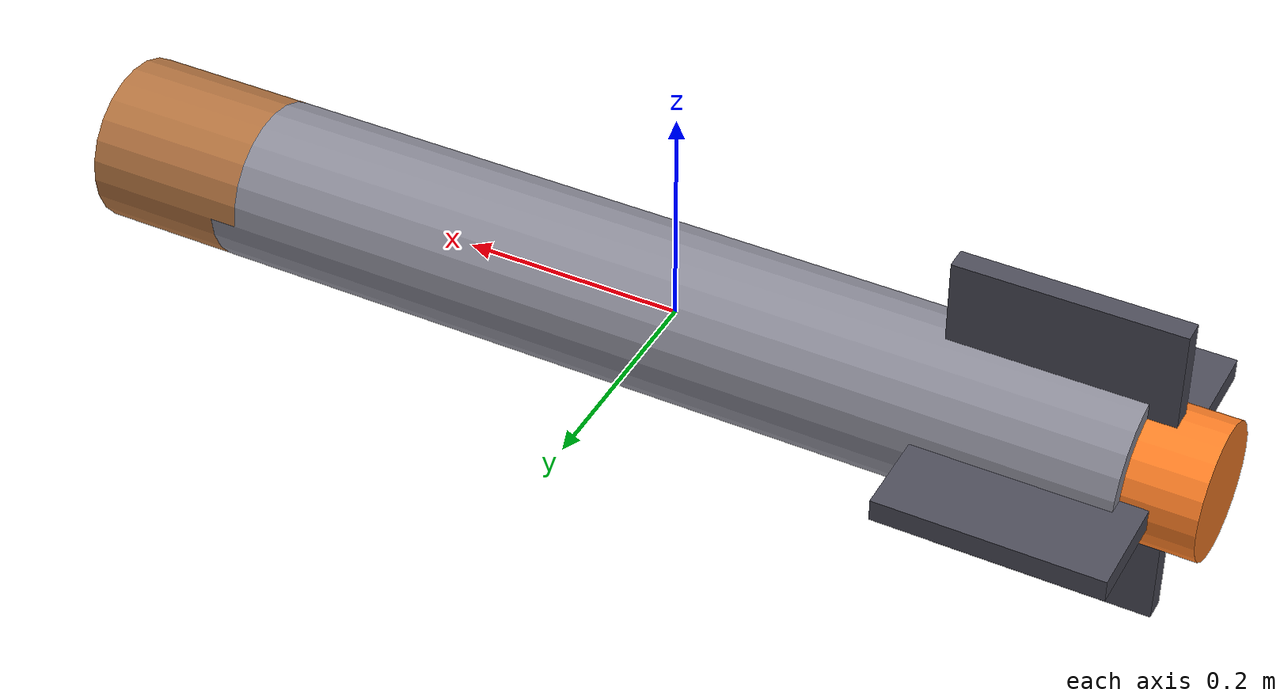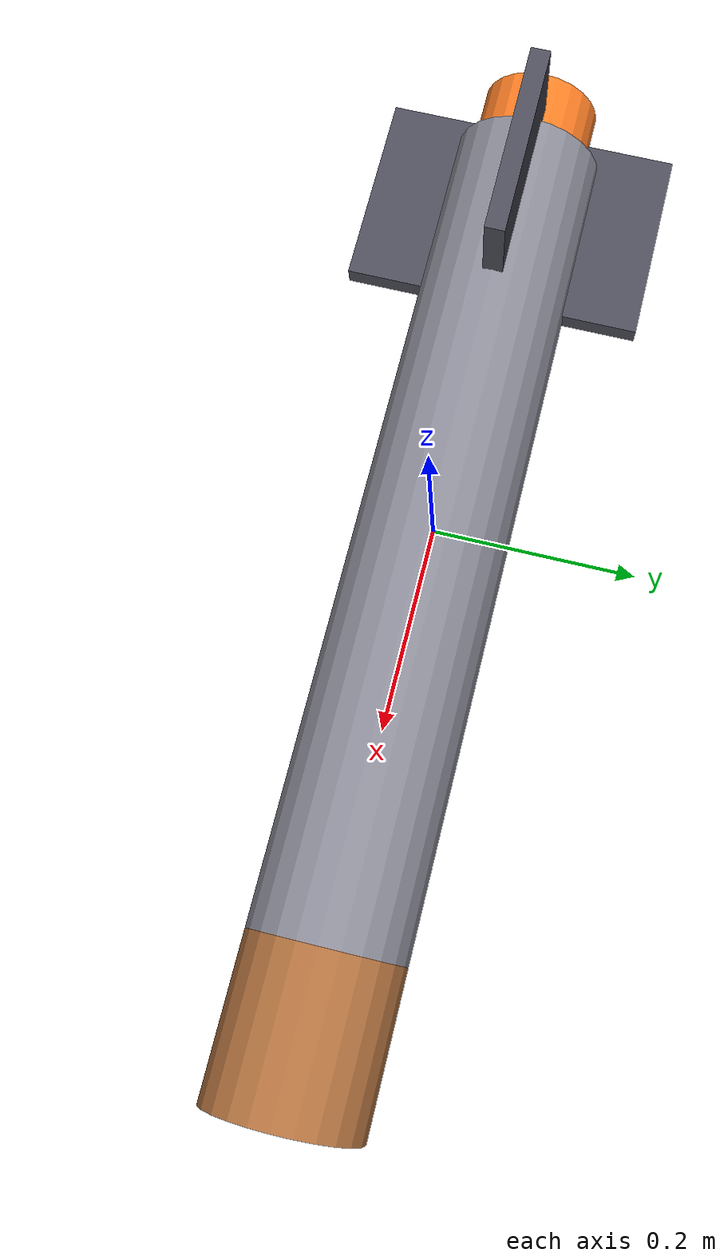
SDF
<?xml version="1.0" encoding="UTF-8"?>
<sdf version="1.9">
  <model name="coyote_b2">
    <pose>0 0 0 0 0 0</pose>

    <link name="base_link">
      <gravity>false</gravity>
      <velocity_decay>
        <linear>0</linear>
        <angular>10</angular>
      </velocity_decay>
      <inertial>
        <mass>7.0</mass>
        <inertia>
          <ixx>0.020</ixx><ixy>0</ixy><ixz>0</ixz>
          <iyy>0.59</iyy><iyz>0</iyz>
          <izz>0.59</izz>
        </inertia>
      </inertial>

      <collision name="body_collision">
        <geometry><box><size>1.0 0.15 0.15</size></box></geometry>
      </collision>

      <!-- Main fuselage (steel grey) -->
      <visual name="fuselage">
        <geometry>
          <cylinder><radius>0.075</radius><length>0.85</length></cylinder>
        </geometry>
        <pose>0 0 0 0 1.5708 0</pose>   <!-- rotate cylinder onto x-axis -->
        <material>
          <ambient>0.45 0.45 0.5 1</ambient>
          <diffuse>0.55 0.55 0.6 1</diffuse>
          <specular>0.7 0.7 0.7 1</specular>
        </material>
      </visual>

      <!-- Nose cone -->
      <visual name="nose_cone">
        <pose>0.475 0 0 0 1.5708 0</pose>
        <geometry>
          <cylinder><radius>0.075</radius><length>0.15</length></cylinder>
        </geometry>
        <material>
          <ambient>0.6 0.4 0.2 1</ambient>
          <diffuse>0.7 0.45 0.25 1</diffuse>
        </material>
      </visual>

      <!-- Cruciform fins (fold-out cruciform — cosmetic, no aero in sim) -->
      <visual name="fin_top">
        <pose>-0.35 0 0.10 0 0 0</pose>
        <geometry><box><size>0.20 0.02 0.10</size></box></geometry>
        <material><ambient>0.25 0.25 0.3 1</ambient><diffuse>0.3 0.3 0.35 1</diffuse></material>
      </visual>
      <visual name="fin_bottom">
        <pose>-0.35 0 -0.10 0 0 0</pose>
        <geometry><box><size>0.20 0.02 0.10</size></box></geometry>
        <material><ambient>0.25 0.25 0.3 1</ambient><diffuse>0.3 0.3 0.35 1</diffuse></material>
      </visual>
      <visual name="fin_left">
        <pose>-0.35 0.10 0 0 0 0</pose>
        <geometry><box><size>0.20 0.10 0.02</size></box></geometry>
        <material><ambient>0.25 0.25 0.3 1</ambient><diffuse>0.3 0.3 0.35 1</diffuse></material>
      </visual>
      <visual name="fin_right">
        <pose>-0.35 -0.10 0 0 0 0</pose>
        <geometry><box><size>0.20 0.10 0.02</size></box></geometry>
        <material><ambient>0.25 0.25 0.3 1</ambient><diffuse>0.3 0.3 0.35 1</diffuse></material>
      </visual>

      <!-- Orange exhaust cap (hot end, points at -x) -->
      <visual name="exhaust">
        <pose>-0.45 0 0 0 1.5708 0</pose>
        <geometry>
          <cylinder><radius>0.06</radius><length>0.08</length></cylinder>
        </geometry>
        <material>
          <ambient>1.0 0.4 0.1 1</ambient><diffuse>1.0 0.5 0.15 1</diffuse>
          <emissive>0.8 0.3 0 1</emissive>
        </material>
      </visual>
    </link>

    <!-- Velocity control (cmd_vel applied in body frame; gz_bridge_shim
         inverse-rotates the world-frame ROS Twist before forwarding). -->
    <plugin filename="gz-sim-velocity-control-system"
      name="gz::sim::systems::VelocityControl">
    </plugin>

    <!-- Odometry publisher (3D — required so cmd_vel rotation can read pose.z). -->
    <plugin filename="gz-sim-odometry-publisher-system"
      name="gz::sim::systems::OdometryPublisher">
      <odom_frame>world</odom_frame>
      <robot_base_frame>coyote_b2</robot_base_frame>
      <odom_publish_frequency>50</odom_publish_frequency>
      <dimensions>3</dimensions>
    </plugin>

  </model>
</sdf>
